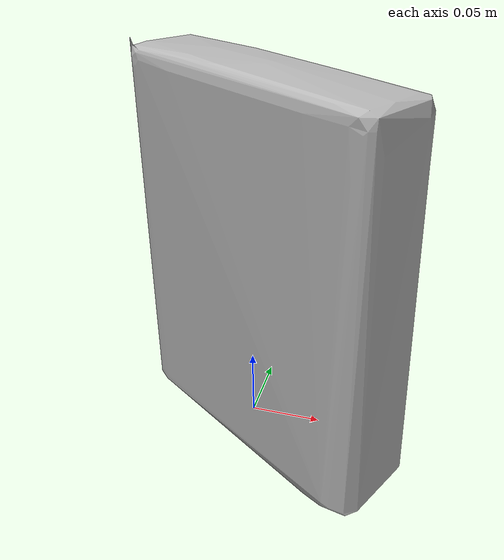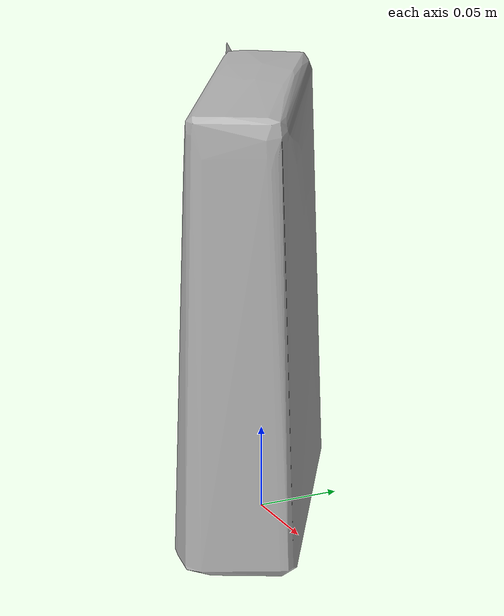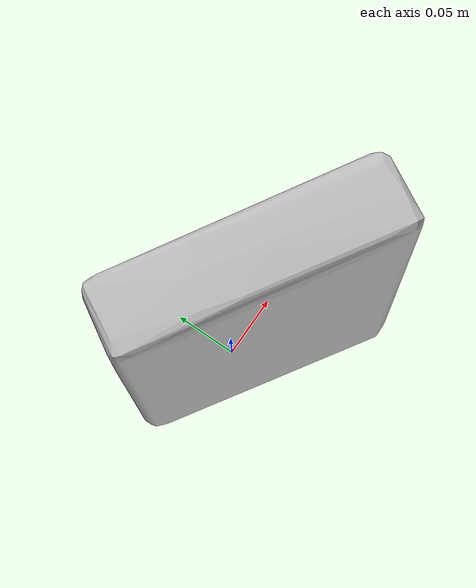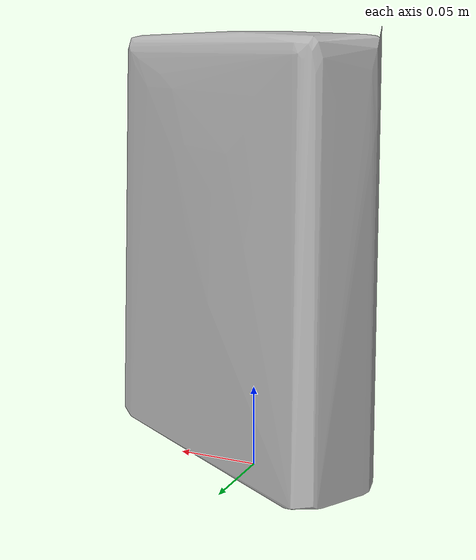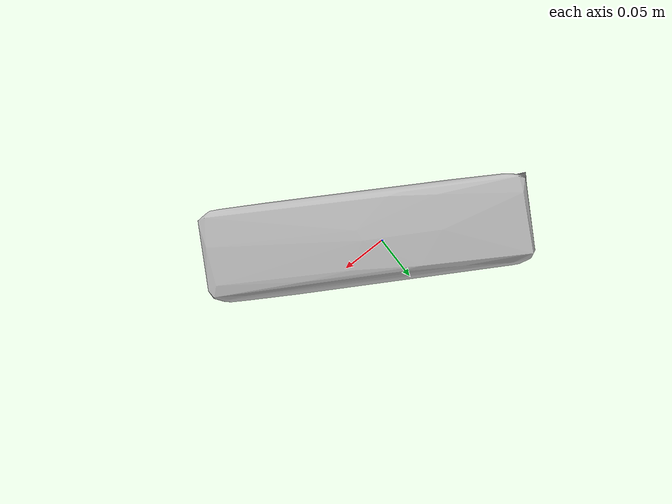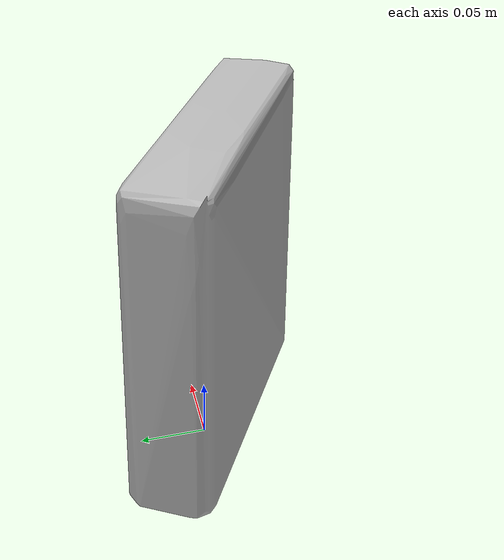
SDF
<?xml version='1.0'?>
<sdf version="1.4">
  <model name="cinnamon_toast_crunch">
    <static>false</static>
    <link name="link">
      <inertial>
        <pose>0.014137660371928332 -0.011288130679600675 0.12975348614518034 -3.1266794562978264 0.0048252254943093615 -2.1239794198662207</pose>
        <mass>0.310196837955065</mass>
        <inertia>
          <ixx>0.0026662477830558255</ixx>
          <ixy>6.101235982150085e-19</ixy>
          <ixz>-3.809798418428654e-20</ixz>
          <iyy>0.001768172057711773</iyy>
          <iyz>7.773639374208778e-20</iyz>
          <izz>0.0010906885193221274</izz>
        </inertia>
      </inertial>
      <collision name="collision">
        <geometry>
          <mesh>
            <!-- Use a downsampled mesh for collisions -->
            <uri>model:///cinnamon_toast_crunch/cinnamon_toast_crunch_250_collision.obj</uri>
	        </mesh>
        </geometry>
        <surface>
      </surface>
      </collision>
      <visual name="visual">
        <geometry>
          <mesh>
            <uri>model:///cinnamon_toast_crunch/optimized_tsdf_texture_mapped_mesh.obj</uri>
	        </mesh>
        </geometry>
        <material>
          <script>
            <uri>model:///cinnamon_toast_crunch/cinnamon_toast_crunch.material</uri>
            <name>cinnamon_toast_crunch</name>
          </script>
        </material>
      </visual>
    </link>
  </model>
</sdf>
